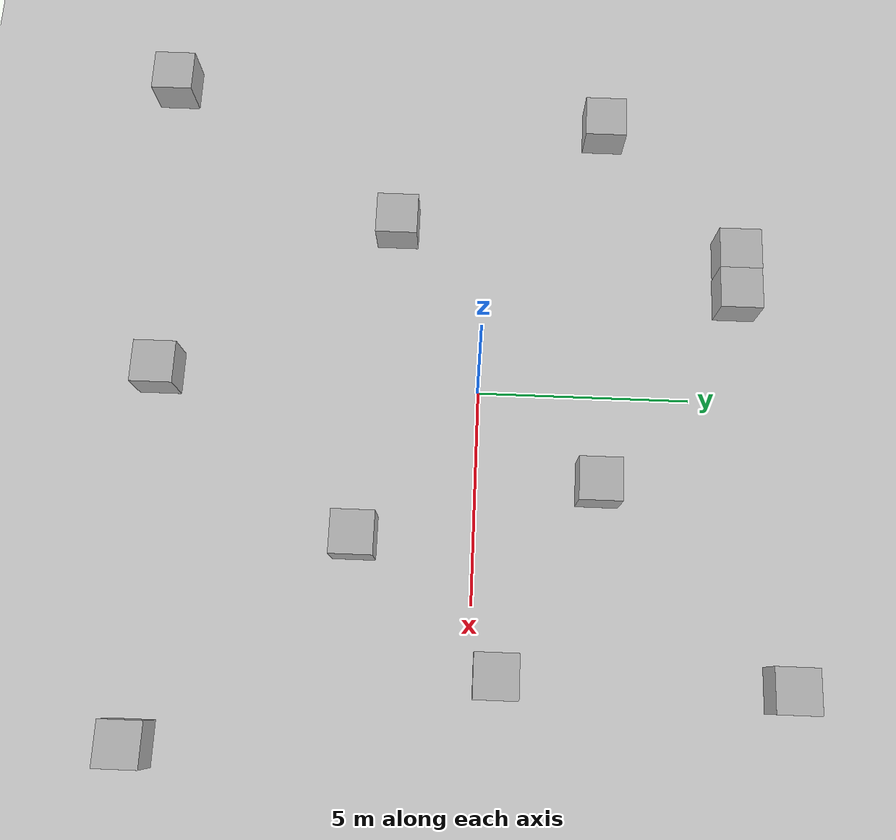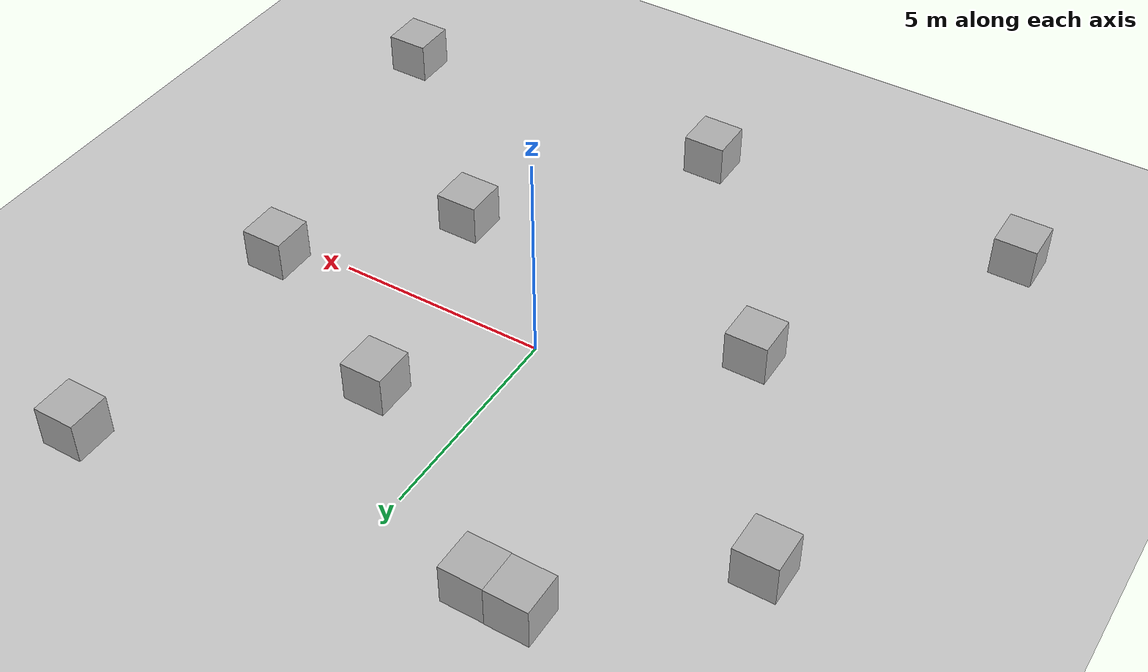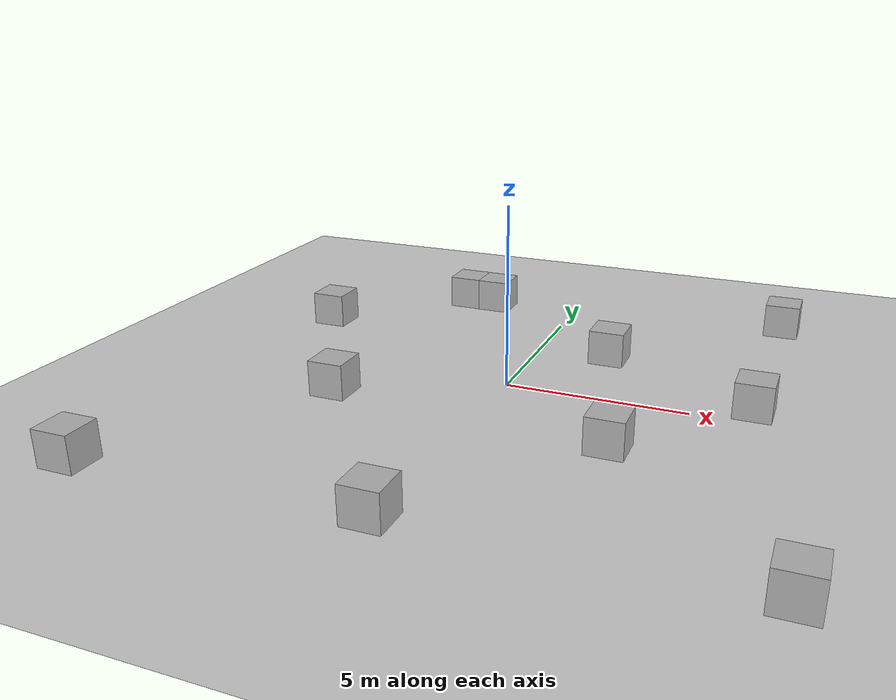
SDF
<sdf version='1.9'>
  <world name='empty'>
    <physics name='1ms' type='dart'>
      <max_step_size>0.001</max_step_size>
      <real_time_factor>1</real_time_factor>
      <real_time_update_rate>1000</real_time_update_rate>
    </physics>

    <!-- ========================================================= Plugins ================================================================ -->
    <plugin name='gz::sim::systems::Physics' filename='ignition-gazebo-physics-system'/>
    <plugin name='gz::sim::systems::UserCommands' filename='ignition-gazebo-user-commands-system'/>
    <plugin name='gz::sim::systems::SceneBroadcaster' filename='ignition-gazebo-scene-broadcaster-system'/>
    <plugin name='gz::sim::systems::Contact' filename='ignition-gazebo-contact-system'/>
    <plugin name='gz::sim::systems::Sensors' filename='gz-sim-sensors-system'/>
    <plugin name='gz::sim::systems::Imu' filename='gz-sim-imu-system'/>

    <gravity>0 0 -9.8</gravity>
    <magnetic_field>6e-06 2.3e-05 -4.2e-05</magnetic_field>
    <atmosphere type='adiabatic'/>
    <scene>
      <ambient>0.4 0.4 0.4 1</ambient>
      <background>0.7 0.7 0.7 1</background>
      <shadows>true</shadows>
    </scene>

    <!-- ========================================================= Ground ================================================================ -->
    <model name='ground_plane'>
      <static>true</static>
      <link name='link'>
        <collision name='collision'>
          <geometry>
            <plane>
              <normal>0 0 1</normal>
              <size>100 100</size>
            </plane>
          </geometry>
          <surface>
            <friction>
              <ode/>
            </friction>
            <bounce/>
            <contact/>
          </surface>
        </collision>
        <visual name='visual'>
          <geometry>
            <plane>
              <normal>0 0 1</normal>
              <size>100 100</size>
            </plane>
          </geometry>
          <material>
            <ambient>0.8 0.8 0.8 1</ambient>
            <diffuse>0.8 0.8 0.8 1</diffuse>
            <specular>0.8 0.8 0.8 1</specular>
          </material>
        </visual>
        <pose>0 0 0 0 -0 0</pose>
        <inertial>
          <pose>0 0 0 0 -0 0</pose>
          <mass>1</mass>
          <inertia>
            <ixx>1</ixx>
            <ixy>0</ixy>
            <ixz>0</ixz>
            <iyy>1</iyy>
            <iyz>0</iyz>
            <izz>1</izz>
          </inertia>
        </inertial>
        <enable_wind>false</enable_wind>
      </link>
      <pose>0 0 0 0 -0 0</pose>
      <self_collide>false</self_collide>
    </model>

    <!-- ========================================================= Obstacles ================================================================ -->
    <model name='box'>
      <pose>2.13259 2.83418 0.5 0 0 -0</pose>
      <link name='box_link'>
        <inertial>
          <inertia>
            <ixx>0.16666</ixx>
            <ixy>0</ixy>
            <ixz>0</ixz>
            <iyy>0.16666</iyy>
            <iyz>0</iyz>
            <izz>0.16666</izz>
          </inertia>
          <mass>1</mass>
          <pose>0 0 0 0 -0 0</pose>
        </inertial>
        <collision name='box_collision'>
          <geometry>
            <box>
              <size>1 1 1</size>
            </box>
          </geometry>
          <surface>
            <friction>
              <ode/>
            </friction>
            <bounce/>
            <contact/>
          </surface>
        </collision>
        <visual name='box_visual'>
          <geometry>
            <box>
              <size>1 1 1</size>
            </box>
          </geometry>
          <material>
            <ambient>0.3 0.3 0.3 1</ambient>
            <diffuse>0.7 0.7 0.7 1</diffuse>
            <specular>1 1 1 1</specular>
          </material>
        </visual>
        <pose>0 0 0 0 -0 0</pose>
        <enable_wind>false</enable_wind>
      </link>
      <static>false</static>
      <self_collide>false</self_collide>
    </model>
    <model name='box_0'>
      <pose>3.55339 -2.70971 0.5 0 0 -0</pose>
      <link name='box_link'>
        <inertial>
          <inertia>
            <ixx>0.16666</ixx>
            <ixy>0</ixy>
            <ixz>0</ixz>
            <iyy>0.16666</iyy>
            <iyz>0</iyz>
            <izz>0.16666</izz>
          </inertia>
          <mass>1</mass>
          <pose>0 0 0 0 -0 0</pose>
        </inertial>
        <collision name='box_collision'>
          <geometry>
            <box>
              <size>1 1 1</size>
            </box>
          </geometry>
          <surface>
            <friction>
              <ode/>
            </friction>
            <bounce/>
            <contact/>
          </surface>
        </collision>
        <visual name='box_visual'>
          <geometry>
            <box>
              <size>1 1 1</size>
            </box>
          </geometry>
          <material>
            <ambient>0.3 0.3 0.3 1</ambient>
            <diffuse>0.7 0.7 0.7 1</diffuse>
            <specular>1 1 1 1</specular>
          </material>
        </visual>
        <pose>0 0 0 0 -0 0</pose>
        <enable_wind>false</enable_wind>
      </link>
      <static>false</static>
      <self_collide>false</self_collide>
    </model>
    <model name='box_1'>
      <pose>6.5306 0.60116 0.5 -0 -0 0</pose>
      <link name='box_link'>
        <inertial>
          <inertia>
            <ixx>0.16666</ixx>
            <ixy>0</ixy>
            <ixz>0</ixz>
            <iyy>0.16666</iyy>
            <iyz>0</iyz>
            <izz>0.16666</izz>
          </inertia>
          <mass>1</mass>
          <pose>0 0 0 0 -0 0</pose>
        </inertial>
        <collision name='box_collision'>
          <geometry>
            <box>
              <size>1 1 1</size>
            </box>
          </geometry>
          <surface>
            <friction>
              <ode/>
            </friction>
            <bounce/>
            <contact/>
          </surface>
        </collision>
        <visual name='box_visual'>
          <geometry>
            <box>
              <size>1 1 1</size>
            </box>
          </geometry>
          <material>
            <ambient>0.3 0.3 0.3 1</ambient>
            <diffuse>0.7 0.7 0.7 1</diffuse>
            <specular>1 1 1 1</specular>
          </material>
        </visual>
        <pose>0 0 0 0 -0 0</pose>
        <enable_wind>false</enable_wind>
      </link>
      <static>false</static>
      <self_collide>false</self_collide>
    </model>
    <model name='box_2'>
      <pose>-2.58546 6.13756 0.5 0 0 -0</pose>
      <link name='box_link'>
        <inertial>
          <inertia>
            <ixx>0.16666</ixx>
            <ixy>0</ixy>
            <ixz>0</ixz>
            <iyy>0.16666</iyy>
            <iyz>0</iyz>
            <izz>0.16666</izz>
          </inertia>
          <mass>1</mass>
          <pose>0 0 0 0 -0 0</pose>
        </inertial>
        <collision name='box_collision'>
          <geometry>
            <box>
              <size>1 1 1</size>
            </box>
          </geometry>
          <surface>
            <friction>
              <ode/>
            </friction>
            <bounce/>
            <contact/>
          </surface>
        </collision>
        <visual name='box_visual'>
          <geometry>
            <box>
              <size>1 1 1</size>
            </box>
          </geometry>
          <material>
            <ambient>0.3 0.3 0.3 1</ambient>
            <diffuse>0.7 0.7 0.7 1</diffuse>
            <specular>1 1 1 1</specular>
          </material>
        </visual>
        <pose>0 0 0 0 -0 0</pose>
        <enable_wind>false</enable_wind>
      </link>
      <static>false</static>
      <self_collide>false</self_collide>
    </model>
    <model name='box_3'>
      <pose>-3.58546 6.14832 0.5 -0 -0 -0</pose>
      <link name='box_link'>
        <inertial>
          <inertia>
            <ixx>0.16666</ixx>
            <ixy>0</ixy>
            <ixz>0</ixz>
            <iyy>0.16666</iyy>
            <iyz>0</iyz>
            <izz>0.16666</izz>
          </inertia>
          <mass>1</mass>
          <pose>0 0 0 0 -0 0</pose>
        </inertial>
        <collision name='box_collision'>
          <geometry>
            <box>
              <size>1 1 1</size>
            </box>
          </geometry>
          <surface>
            <friction>
              <ode/>
            </friction>
            <bounce/>
            <contact/>
          </surface>
        </collision>
        <visual name='box_visual'>
          <geometry>
            <box>
              <size>1 1 1</size>
            </box>
          </geometry>
          <material>
            <ambient>0.3 0.3 0.3 1</ambient>
            <diffuse>0.7 0.7 0.7 1</diffuse>
            <specular>1 1 1 1</specular>
          </material>
        </visual>
        <pose>0 0 0 0 -0 0</pose>
        <enable_wind>false</enable_wind>
      </link>
      <static>false</static>
      <self_collide>false</self_collide>
    </model>
    <model name='box_4'>
      <pose>-6.98023 2.92294 0.5 0 0 -0</pose>
      <link name='box_link'>
        <inertial>
          <inertia>
            <ixx>0.16666</ixx>
            <ixy>0</ixy>
            <ixz>0</ixz>
            <iyy>0.16666</iyy>
            <iyz>0</iyz>
            <izz>0.16666</izz>
          </inertia>
          <mass>1</mass>
          <pose>0 0 0 0 -0 0</pose>
        </inertial>
        <collision name='box_collision'>
          <geometry>
            <box>
              <size>1 1 1</size>
            </box>
          </geometry>
          <surface>
            <friction>
              <ode/>
            </friction>
            <bounce/>
            <contact/>
          </surface>
        </collision>
        <visual name='box_visual'>
          <geometry>
            <box>
              <size>1 1 1</size>
            </box>
          </geometry>
          <material>
            <ambient>0.3 0.3 0.3 1</ambient>
            <diffuse>0.7 0.7 0.7 1</diffuse>
            <specular>1 1 1 1</specular>
          </material>
        </visual>
        <pose>0 0 0 0 -0 0</pose>
        <enable_wind>false</enable_wind>
      </link>
      <static>false</static>
      <self_collide>false</self_collide>
    </model>
    <model name='box_5'>
      <pose>6.58181 7.06723 0.5 0 0 -0</pose>
      <link name='box_link'>
        <inertial>
          <inertia>
            <ixx>0.16666</ixx>
            <ixy>0</ixy>
            <ixz>0</ixz>
            <iyy>0.16666</iyy>
            <iyz>0</iyz>
            <izz>0.16666</izz>
          </inertia>
          <mass>1</mass>
          <pose>0 0 0 0 -0 0</pose>
        </inertial>
        <collision name='box_collision'>
          <geometry>
            <box>
              <size>1 1 1</size>
            </box>
          </geometry>
          <surface>
            <friction>
              <ode/>
            </friction>
            <bounce/>
            <contact/>
          </surface>
        </collision>
        <visual name='box_visual'>
          <geometry>
            <box>
              <size>1 1 1</size>
            </box>
          </geometry>
          <material>
            <ambient>0.3 0.3 0.3 1</ambient>
            <diffuse>0.7 0.7 0.7 1</diffuse>
            <specular>1 1 1 1</specular>
          </material>
        </visual>
        <pose>0 0 0 0 -0 0</pose>
        <enable_wind>false</enable_wind>
      </link>
      <static>false</static>
      <self_collide>false</self_collide>
    </model>
    <model name='box_6'>
      <pose>-4.1763 -2.1196 0.5 0 0 -0</pose>
      <link name='box_link'>
        <inertial>
          <inertia>
            <ixx>0.16666</ixx>
            <ixy>0</ixy>
            <ixz>0</ixz>
            <iyy>0.16666</iyy>
            <iyz>0</iyz>
            <izz>0.16666</izz>
          </inertia>
          <mass>1</mass>
          <pose>0 0 0 0 -0 0</pose>
        </inertial>
        <collision name='box_collision'>
          <geometry>
            <box>
              <size>1 1 1</size>
            </box>
          </geometry>
          <surface>
            <friction>
              <ode/>
            </friction>
            <bounce/>
            <contact/>
          </surface>
        </collision>
        <visual name='box_visual'>
          <geometry>
            <box>
              <size>1 1 1</size>
            </box>
          </geometry>
          <material>
            <ambient>0.3 0.3 0.3 1</ambient>
            <diffuse>0.7 0.7 0.7 1</diffuse>
            <specular>1 1 1 1</specular>
          </material>
        </visual>
        <pose>0 0 0 0 -0 0</pose>
        <enable_wind>false</enable_wind>
      </link>
      <static>false</static>
      <self_collide>false</self_collide>
    </model>
    <model name='box_7'>
      <pose>-7.85222 -7.95092 0.5 0 0 -0</pose>
      <link name='box_link'>
        <inertial>
          <inertia>
            <ixx>0.16666</ixx>
            <ixy>0</ixy>
            <ixz>0</ixz>
            <iyy>0.16666</iyy>
            <iyz>0</iyz>
            <izz>0.16666</izz>
          </inertia>
          <mass>1</mass>
          <pose>0 0 0 0 -0 0</pose>
        </inertial>
        <collision name='box_collision'>
          <geometry>
            <box>
              <size>1 1 1</size>
            </box>
          </geometry>
          <surface>
            <friction>
              <ode/>
            </friction>
            <bounce/>
            <contact/>
          </surface>
        </collision>
        <visual name='box_visual'>
          <geometry>
            <box>
              <size>1 1 1</size>
            </box>
          </geometry>
          <material>
            <ambient>0.3 0.3 0.3 1</ambient>
            <diffuse>0.7 0.7 0.7 1</diffuse>
            <specular>1 1 1 1</specular>
          </material>
        </visual>
        <pose>0 0 0 0 -0 0</pose>
        <enable_wind>false</enable_wind>
      </link>
      <static>false</static>
      <self_collide>false</self_collide>
    </model>
    <model name='box_8'>
      <pose>-0.22275 -7.58535 0.5 0 0 -0</pose>
      <link name='box_link'>
        <inertial>
          <inertia>
            <ixx>0.16666</ixx>
            <ixy>0</ixy>
            <ixz>0</ixz>
            <iyy>0.16666</iyy>
            <iyz>0</iyz>
            <izz>0.16666</izz>
          </inertia>
          <mass>1</mass>
          <pose>0 0 0 0 -0 0</pose>
        </inertial>
        <collision name='box_collision'>
          <geometry>
            <box>
              <size>1 1 1</size>
            </box>
          </geometry>
          <surface>
            <friction>
              <ode/>
            </friction>
            <bounce/>
            <contact/>
          </surface>
        </collision>
        <visual name='box_visual'>
          <geometry>
            <box>
              <size>1 1 1</size>
            </box>
          </geometry>
          <material>
            <ambient>0.3 0.3 0.3 1</ambient>
            <diffuse>0.7 0.7 0.7 1</diffuse>
            <specular>1 1 1 1</specular>
          </material>
        </visual>
        <pose>0 0 0 0 -0 0</pose>
        <enable_wind>false</enable_wind>
      </link>
      <static>false</static>
      <self_collide>false</self_collide>
    </model>
    <model name='box_9'>
      <pose>8.23063 -7.34476 0.5 0 0 -0</pose>
      <link name='box_link'>
        <inertial>
          <inertia>
            <ixx>0.16666</ixx>
            <ixy>0</ixy>
            <ixz>0</ixz>
            <iyy>0.16666</iyy>
            <iyz>0</iyz>
            <izz>0.16666</izz>
          </inertia>
          <mass>1</mass>
          <pose>0 0 0 0 -0 0</pose>
        </inertial>
        <collision name='box_collision'>
          <geometry>
            <box>
              <size>1 1 1</size>
            </box>
          </geometry>
          <surface>
            <friction>
              <ode/>
            </friction>
            <bounce/>
            <contact/>
          </surface>
        </collision>
        <visual name='box_visual'>
          <geometry>
            <box>
              <size>1 1 1</size>
            </box>
          </geometry>
          <material>
            <ambient>0.3 0.3 0.3 1</ambient>
            <diffuse>0.7 0.7 0.7 1</diffuse>
            <specular>1 1 1 1</specular>
          </material>
        </visual>
        <pose>0 0 0 0 -0 0</pose>
        <enable_wind>false</enable_wind>
      </link>
      <static>false</static>
      <self_collide>false</self_collide>
    </model>

    <light name='sun' type='directional'>
      <pose>0 0 10 0 -0 0</pose>
      <cast_shadows>true</cast_shadows>
      <intensity>1</intensity>
      <direction>-0.5 0.1 -0.9</direction>
      <diffuse>0.8 0.8 0.8 1</diffuse>
      <specular>0.2 0.2 0.2 1</specular>
      <attenuation>
        <range>1000</range>
        <linear>0.01</linear>
        <constant>0.90000000000000002</constant>
        <quadratic>0.001</quadratic>
      </attenuation>
      <spot>
        <inner_angle>0</inner_angle>
        <outer_angle>0</outer_angle>
        <falloff>0</falloff>
      </spot>
    </light>

    <!-- Usage Notes -->
    <!--  Copy the below movement TriggeredPublishers to any world .sdf -->
    <!--  to enable movement of the actor_robot. Also need to start the -->
    <!--  Key Publisher plugin after starting the simulation (top-right -->
    <!--  corner of the gazebo window) -->

    <!-- Moving Forward-->
    <plugin filename="libignition-gazebo-triggered-publisher-system.so"
            name="ignition::gazebo::systems::TriggeredPublisher">
        <input type="ignition.msgs.Int32" topic="/keyboard/keypress">
            <match field="data">87</match>
        </input>
        <output type="ignition.msgs.Twist" topic="/cmd_vel2">
            linear: {x: 1.0}, angular: {z: 0.0}
        </output>
    </plugin>

    <!-- Moving Backward-->
    <plugin filename="libignition-gazebo-triggered-publisher-system.so"
            name="ignition::gazebo::systems::TriggeredPublisher">
        <input type="ignition.msgs.Int32" topic="/keyboard/keypress">
            <match field="data">88</match>
        </input>
        <output type="ignition.msgs.Twist" topic="/cmd_vel2">
            linear: {x: -1.0}, angular: {z: 0.0}
        </output>
    </plugin>

    <!-- Turn Left-->
    <plugin filename="libignition-gazebo-triggered-publisher-system.so"
            name="ignition::gazebo::systems::TriggeredPublisher">
        <input type="ignition.msgs.Int32" topic="/keyboard/keypress">
            <match field="data">65</match>
        </input>
        <output type="ignition.msgs.Twist" topic="/cmd_vel2">
            linear: {x: 0.0}, angular: {z: 1.0}
        </output>
    </plugin>

    <!-- Turn Right-->
    <plugin filename="libignition-gazebo-triggered-publisher-system.so"
            name="ignition::gazebo::systems::TriggeredPublisher">
        <input type="ignition.msgs.Int32" topic="/keyboard/keypress">
            <match field="data">68</match>
        </input>
        <output type="ignition.msgs.Twist" topic="/cmd_vel2">
            linear: {x: 0.0}, angular: {z: -1.0}
        </output>
    </plugin>

    <!-- Stop-->
    <plugin filename="libignition-gazebo-triggered-publisher-system.so"
            name="ignition::gazebo::systems::TriggeredPublisher">
        <input type="ignition.msgs.Int32" topic="/keyboard/keypress">
            <match field="data">83</match>
        </input>
        <output type="ignition.msgs.Twist" topic="/cmd_vel2">
            linear: {x: 0.0}, angular: {z: 0.0}
        </output>
    </plugin>
  </world>
</sdf>
